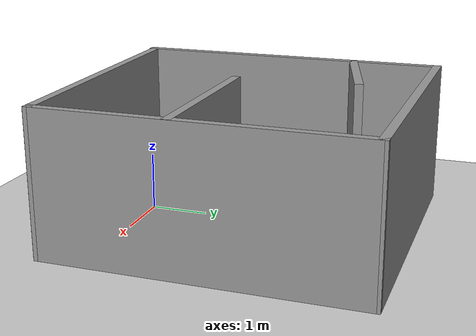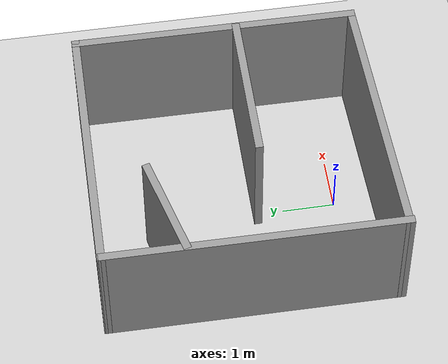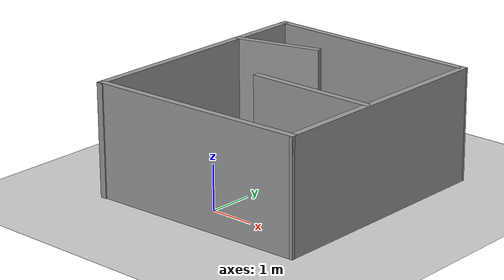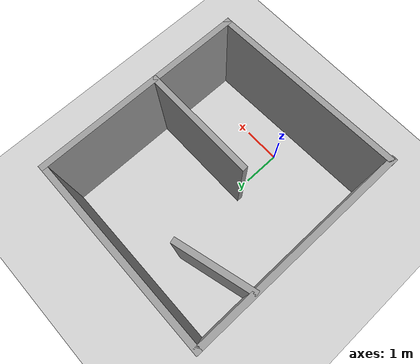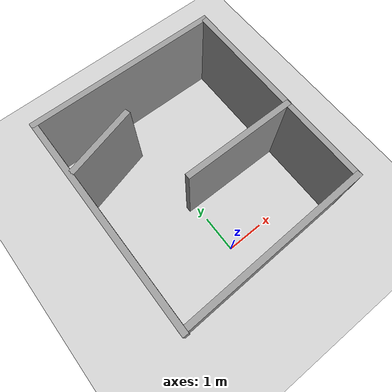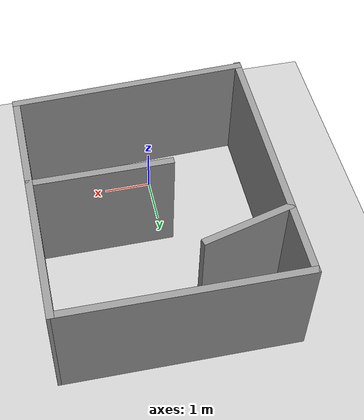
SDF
<sdf version="1.7">
 <world name="default">
  <light name="sun" type="directional">
   <pose>0 0 10 0 -0 0</pose>
   <diffuse>0.8 0.8 0.8 1</diffuse>
   <specular>0.2 0.2 0.2 1</specular>
   <attenuation>
    <range>1000</range>
    <constant>0.9</constant>
    <linear>0.01</linear>
    <quadratic>0.001</quadratic>
   </attenuation>
   <direction>-0.5 0.1 -0.9</direction>
   <spot><inner_angle>0</inner_angle><outer_angle>0</outer_angle><falloff>0</falloff></spot>
  </light>
  <model name="ground_plane">
   <static>1</static>
   <link name="link">
    <collision name="collision">
     <geometry><plane><normal>0 0 1</normal><size>100 100</size></plane></geometry>
     <surface><friction><ode><mu>100</mu><mu2>50</mu2></ode></friction></surface>
    </collision>
    <visual name="visual">
     <cast_shadows>0</cast_shadows>
     <geometry><plane><normal>0 0 1</normal><size>100 100</size></plane></geometry>
     <material>
      <script><uri>file://media/materials/scripts/gazebo.material</uri><name>Gazebo/Grey</name></script>
     </material>
    </visual>
   </link>
  </model>
  <gravity>0 0 -9.8</gravity>
  <magnetic_field>6e-06 2.3e-05 -4.2e-05</magnetic_field>
  <atmosphere type="adiabatic"/>
  <physics type="ode">
   <max_step_size>0.001</max_step_size>
   <real_time_factor>1</real_time_factor>
   <real_time_update_rate>1000</real_time_update_rate>
  </physics>
  <scene><ambient>0.4 0.4 0.4 1</ambient><background>0.7 0.7 0.7 1</background><shadows>1</shadows></scene>
  <audio><device>default</device></audio>
  <spherical_coordinates>
   <surface_model>EARTH_WGS84</surface_model>
   <latitude_deg>0</latitude_deg>
   <longitude_deg>0</longitude_deg>
   <elevation>0</elevation>
   <heading_deg>0</heading_deg>
  </spherical_coordinates>
  <model name="Untitled">
   <pose>0.270875 1.87738 0 0 -0 0</pose>
   <link name="Wall_0">
    <collision name="Wall_0_Collision">
     <geometry><box><size>5.06405 0.15 2.5</size></box></geometry>
     <pose>0 0 1.25 0 -0 0</pose>
    </collision>
    <visual name="Wall_0_Visual">
     <pose>0 0 1.25 0 -0 0</pose>
     <geometry><box><size>5.06405 0.15 2.5</size></box></geometry>
     <material>
      <script><uri>file://media/materials/scripts/gazebo.material</uri><name>Gazebo/Grey</name></script>
      <ambient>1 1 1 1</ambient>
     </material>
     <meta><layer>0</layer></meta>
    </visual>
    <pose>-0.010227 -2.68674 0 0 -0 0.032965</pose>
   </link>
   <link name="Wall_10">
    <collision name="Wall_10_Collision">
     <geometry><box><size>2 0.15 2.5</size></box></geometry>
     <pose>0 0 1.25 0 -0 0</pose>
    </collision>
    <visual name="Wall_10_Visual">
     <pose>0 0 1.25 0 -0 0</pose>
     <geometry><box><size>2 0.15 2.5</size></box></geometry>
     <material>
      <script><uri>file://media/materials/scripts/gazebo.material</uri><name>Gazebo/Grey</name></script>
      <ambient>1 1 1 1</ambient>
     </material>
     <meta><layer>0</layer></meta>
    </visual>
    <pose>-1.52438 1.50331 0 0 -0 0.261799</pose>
   </link>
   <link name="Wall_2">
    <collision name="Wall_2_Collision">
     <geometry><box><size>5.70822 0.15 2.5</size></box></geometry>
     <pose>0 0 1.25 0 -0 0</pose>
    </collision>
    <visual name="Wall_2_Visual">
     <pose>0 0 1.25 0 -0 0</pose>
     <geometry><box><size>5.70822 0.15 2.5</size></box></geometry>
     <material>
      <script><uri>file://media/materials/scripts/gazebo.material</uri><name>Gazebo/Grey</name></script>
      <ambient>1 1 1 1</ambient>
     </material>
     <meta><layer>0</layer></meta>
    </visual>
    <pose>-2.45435 -0.011761 0 0 -0 1.56663</pose>
   </link>
   <link name="Wall_3">
    <collision name="Wall_3_Collision">
     <geometry><box><size>5.06057 0.15 2.5</size></box></geometry>
     <pose>0 0 1.25 0 -0 0</pose>
    </collision>
    <visual name="Wall_3_Visual">
     <pose>0 0 1.25 0 -0 0</pose>
     <geometry><box><size>5.06057 0.15 2.5</size></box></geometry>
     <material>
      <script><uri>file://media/materials/scripts/gazebo.material</uri><name>Gazebo/Grey</name></script>
      <ambient>1 1 1 1</ambient>
     </material>
     <meta><layer>0</layer></meta>
    </visual>
    <pose>0.01247 2.76733 0 0 -0 -0.009421</pose>
   </link>
   <link name="Wall_4">
    <collision name="Wall_4_Collision">
     <geometry><box><size>5.5 0.15 2.5</size></box></geometry>
     <pose>0 0 1.25 0 -0 0</pose>
    </collision>
    <visual name="Wall_4_Visual">
     <pose>0 0 1.25 0 -0 0</pose>
     <geometry><box><size>5.5 0.15 2.5</size></box></geometry>
     <material>
      <script><uri>file://media/materials/scripts/gazebo.material</uri><name>Gazebo/Grey</name></script>
      <ambient>1 1 1 1</ambient>
     </material>
     <meta><layer>0</layer></meta>
    </visual>
    <pose>2.4566 0.06922 0 0 -0 -1.57496</pose>
   </link>
   <link name="Wall_6">
    <collision name="Wall_6_Collision">
     <geometry><box><size>3 0.15 2.5</size></box></geometry>
     <pose>0 0 1.25 0 -0 0</pose>
    </collision>
    <visual name="Wall_6_Visual">
     <pose>0 0 1.25 0 -0 0</pose>
     <geometry><box><size>3 0.15 2.5</size></box></geometry>
     <material>
      <script><uri>file://media/materials/scripts/gazebo.material</uri><name>Gazebo/Grey</name></script>
      <ambient>1 1 1 1</ambient>
     </material>
     <meta><layer>0</layer></meta>
    </visual>
    <pose>1.01457 -0.355244 0 0 -0 3.14159</pose>
   </link>
   <static>1</static>
  </model>
 </world>
</sdf>
